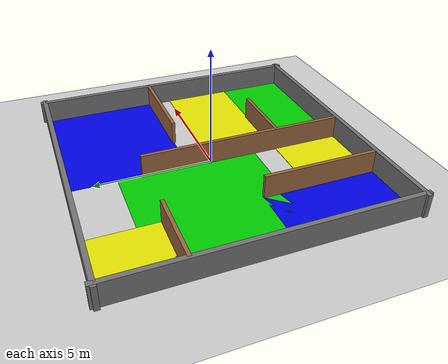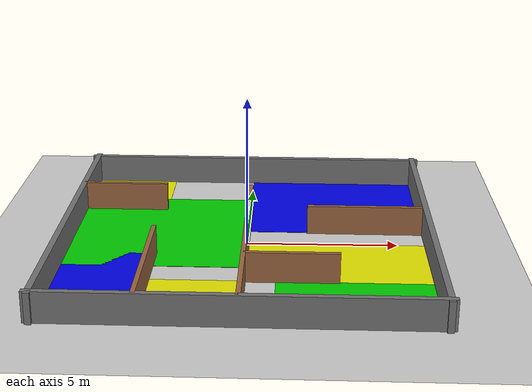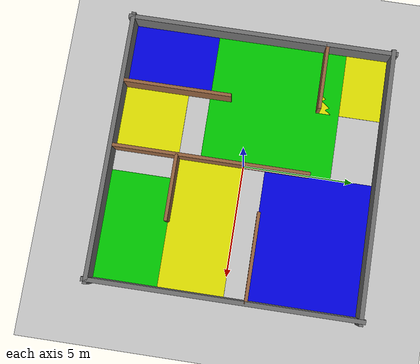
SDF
<?xml version="1.0"?>
<sdf version="1.8">
  <world name="default">
    <physics type="ode">
      <real_time_update_rate>1000.0</real_time_update_rate>
      <max_step_size>0.001</max_step_size>
      <real_time_factor>1</real_time_factor>
      <ode>
        <solver>
          <type>quick</type>
          <iters>150</iters>
          <precon_iters>0</precon_iters>
          <sor>1.4</sor>
          <use_dynamic_moi_rescaling>1</use_dynamic_moi_rescaling>
        </solver>
        <constraints>
          <cfm>0.00001</cfm>
          <erp>0.2</erp>
          <contact_max_correcting_vel>2000.0</contact_max_correcting_vel>
          <contact_surface_layer>0.01</contact_surface_layer>
        </constraints>
      </ode>
    </physics>
    <plugin filename="gz-sim-physics-system" name="gz::sim::systems::Physics"/>
    <plugin filename="gz-sim-user-commands-system" name="gz::sim::systems::UserCommands"/>
    <plugin filename="gz-sim-scene-broadcaster-system" name="gz::sim::systems::SceneBroadcaster"/>
    <plugin filename="gz-sim-sensors-system" name="gz::sim::systems::Sensors">
      <render_engine>ogre2</render_engine>
    </plugin>
    <plugin filename="gz-sim-imu-system" name="gz::sim::systems::Imu"/>

    <include>
      <uri>https://fuel.gazebosim.org/1.0/OpenRobotics/models/Ground Plane</uri>
    </include>
    <include>
      <uri>https://fuel.gazebosim.org/1.0/OpenRobotics/models/Sun</uri>
    </include>

    <!-- ==================== OUTER WALLS (12x12 arena) ==================== -->
    <model name="wall_north">
      <static>true</static>
      <pose>0 6 0.5 0 0 0</pose>
      <link name="link">
        <collision name="collision"><geometry><box><size>12.4 0.2 1.0</size></box></geometry></collision>
        <visual name="visual">
          <geometry><box><size>12.4 0.2 1.0</size></box></geometry>
          <material><ambient>0.45 0.45 0.45 1</ambient><diffuse>0.45 0.45 0.45 1</diffuse></material>
        </visual>
      </link>
    </model>

    <model name="wall_south">
      <static>true</static>
      <pose>0 -6 0.5 0 0 0</pose>
      <link name="link">
        <collision name="collision"><geometry><box><size>12.4 0.2 1.0</size></box></geometry></collision>
        <visual name="visual">
          <geometry><box><size>12.4 0.2 1.0</size></box></geometry>
          <material><ambient>0.45 0.45 0.45 1</ambient><diffuse>0.45 0.45 0.45 1</diffuse></material>
        </visual>
      </link>
    </model>

    <model name="wall_east">
      <static>true</static>
      <pose>6 0 0.5 0 0 0</pose>
      <link name="link">
        <collision name="collision"><geometry><box><size>0.2 12.4 1.0</size></box></geometry></collision>
        <visual name="visual">
          <geometry><box><size>0.2 12.4 1.0</size></box></geometry>
          <material><ambient>0.45 0.45 0.45 1</ambient><diffuse>0.45 0.45 0.45 1</diffuse></material>
        </visual>
      </link>
    </model>

    <model name="wall_west">
      <static>true</static>
      <pose>-6 0 0.5 0 0 0</pose>
      <link name="link">
        <collision name="collision"><geometry><box><size>0.2 12.4 1.0</size></box></geometry></collision>
        <visual name="visual">
          <geometry><box><size>0.2 12.4 1.0</size></box></geometry>
          <material><ambient>0.45 0.45 0.45 1</ambient><diffuse>0.45 0.45 0.45 1</diffuse></material>
        </visual>
      </link>
    </model>

    <!-- ==================== INTERIOR WALLS ==================== -->

    <!-- Vertical wall down the center, gap at the top -->
    <model name="wall_inner_v_center">
      <static>true</static>
      <pose>0 -1.5 0.5 0 0 0</pose>
      <link name="link">
        <collision name="collision"><geometry><box><size>0.15 9 1.0</size></box></geometry></collision>
        <visual name="visual">
          <geometry><box><size>0.15 9 1.0</size></box></geometry>
          <material><ambient>0.6 0.4 0.25 1</ambient><diffuse>0.6 0.4 0.25 1</diffuse></material>
        </visual>
      </link>
    </model>

    <!-- Horizontal wall in the west half creating a north-west closet, gap on the right -->
    <model name="wall_inner_h_nw">
      <static>true</static>
      <pose>-4.5 3 0.5 0 0 0</pose>
      <link name="link">
        <collision name="collision"><geometry><box><size>3 0.15 1.0</size></box></geometry></collision>
        <visual name="visual">
          <geometry><box><size>3 0.15 1.0</size></box></geometry>
          <material><ambient>0.6 0.4 0.25 1</ambient><diffuse>0.6 0.4 0.25 1</diffuse></material>
        </visual>
      </link>
    </model>

    <!-- Horizontal wall in the east half creating upper-right room, gap on the left -->
    <model name="wall_inner_h_ne">
      <static>true</static>
      <pose>4 1 0.5 0 0 0</pose>
      <link name="link">
        <collision name="collision"><geometry><box><size>4 0.15 1.0</size></box></geometry></collision>
        <visual name="visual">
          <geometry><box><size>4 0.15 1.0</size></box></geometry>
          <material><ambient>0.6 0.4 0.25 1</ambient><diffuse>0.6 0.4 0.25 1</diffuse></material>
        </visual>
      </link>
    </model>

    <!-- Short horizontal wall in the east half creating lower-right alcove, gap on the right -->
    <model name="wall_inner_h_se">
      <static>true</static>
      <pose>1.5 -3 0.5 0 0 0</pose>
      <link name="link">
        <collision name="collision"><geometry><box><size>3 0.15 1.0</size></box></geometry></collision>
        <visual name="visual">
          <geometry><box><size>3 0.15 1.0</size></box></geometry>
          <material><ambient>0.6 0.4 0.25 1</ambient><diffuse>0.6 0.4 0.25 1</diffuse></material>
        </visual>
      </link>
    </model>

    <!-- Vertical wall on the west side creating a south-west corridor -->
    <model name="wall_inner_v_sw">
      <static>true</static>
      <pose>-3 -3.5 0.5 0 0 0</pose>
      <link name="link">
        <collision name="collision"><geometry><box><size>0.15 5 1.0</size></box></geometry></collision>
        <visual name="visual">
          <geometry><box><size>0.15 5 1.0</size></box></geometry>
          <material><ambient>0.6 0.4 0.25 1</ambient><diffuse>0.6 0.4 0.25 1</diffuse></material>
        </visual>
      </link>
    </model>

    <!-- ==================== FLOOR ZONES (green, yellow, blue only) ==================== -->

    <!-- GREEN ZONE - large west-side main area -->
    <model name="zone_green">
      <static>true</static>
      <pose>-3 1 0.005 0 0 0</pose>
      <link name="link">
        <visual name="visual">
          <geometry><box><size>6 6 0.01</size></box></geometry>
          <material><ambient>0.0 0.8 0.0 1</ambient><diffuse>0.0 0.8 0.0 1</diffuse></material>
        </visual>
      </link>
    </model>

    <!-- YELLOW ZONE - north-west closet -->
    <model name="zone_yellow_nw">
      <static>true</static>
      <pose>-4.5 4.5 0.005 0 0 0</pose>
      <link name="link">
        <visual name="visual">
          <geometry><box><size>3 3 0.01</size></box></geometry>
          <material><ambient>0.9 0.9 0.0 1</ambient><diffuse>0.9 0.9 0.0 1</diffuse></material>
        </visual>
      </link>
    </model>

    <!-- BLUE ZONE - east upper room -->
    <model name="zone_blue_ne">
      <static>true</static>
      <pose>3 3.5 0.005 0 0 0</pose>
      <link name="link">
        <visual name="visual">
          <geometry><box><size>6 5 0.01</size></box></geometry>
          <material><ambient>0.0 0.0 0.9 1</ambient><diffuse>0.0 0.0 0.9 1</diffuse></material>
        </visual>
      </link>
    </model>

    <!-- YELLOW ZONE - east lower section -->
    <model name="zone_yellow_se">
      <static>true</static>
      <pose>3 -1.5 0.005 0 0 0</pose>
      <link name="link">
        <visual name="visual">
          <geometry><box><size>6 3 0.01</size></box></geometry>
          <material><ambient>0.9 0.9 0.0 1</ambient><diffuse>0.9 0.9 0.0 1</diffuse></material>
        </visual>
      </link>
    </model>

    <!-- GREEN ZONE - east bottom alcove -->
    <model name="zone_green_se">
      <static>true</static>
      <pose>3.5 -4.5 0.005 0 0 0</pose>
      <link name="link">
        <visual name="visual">
          <geometry><box><size>5 3 0.01</size></box></geometry>
          <material><ambient>0.0 0.8 0.0 1</ambient><diffuse>0.0 0.8 0.0 1</diffuse></material>
        </visual>
      </link>
    </model>

    <!-- BLUE ZONE - south-west corridor -->
    <model name="zone_blue_sw">
      <static>true</static>
      <pose>-4.5 -3.5 0.005 0 0 0</pose>
      <link name="link">
        <visual name="visual">
          <geometry><box><size>3 5 0.01</size></box></geometry>
          <material><ambient>0.0 0.0 0.9 1</ambient><diffuse>0.0 0.0 0.9 1</diffuse></material>
        </visual>
      </link>
    </model>

    <!-- YELLOW ZONE - south center strip -->
    <model name="zone_yellow_sc">
      <static>true</static>
      <pose>-1.5 -4.5 0.005 0 0 0</pose>
      <link name="link">
        <visual name="visual">
          <geometry><box><size>3 3 0.01</size></box></geometry>
          <material><ambient>0.9 0.9 0.0 1</ambient><diffuse>0.9 0.9 0.0 1</diffuse></material>
        </visual>
      </link>
    </model>

  </world>
</sdf>
